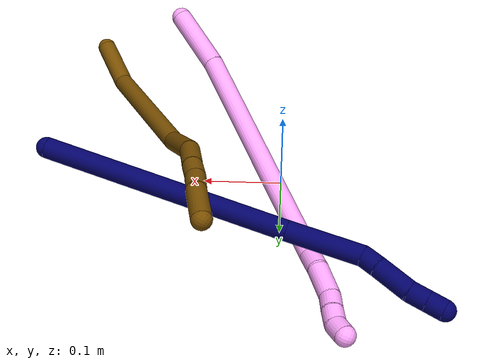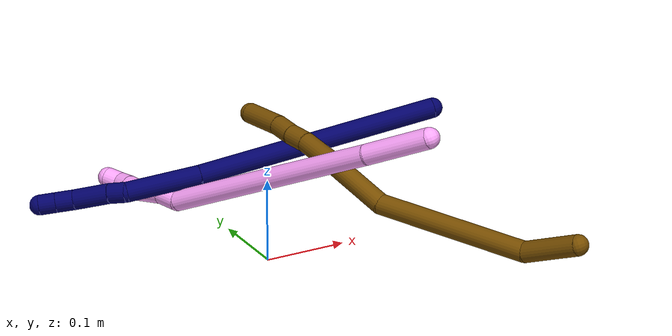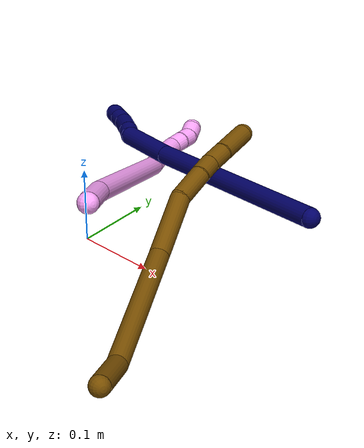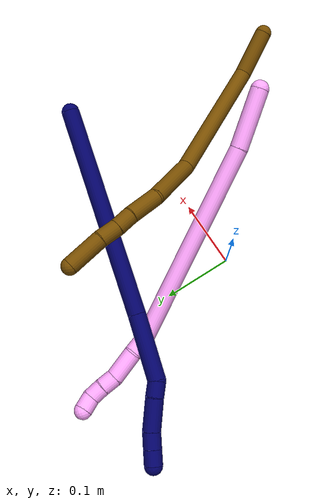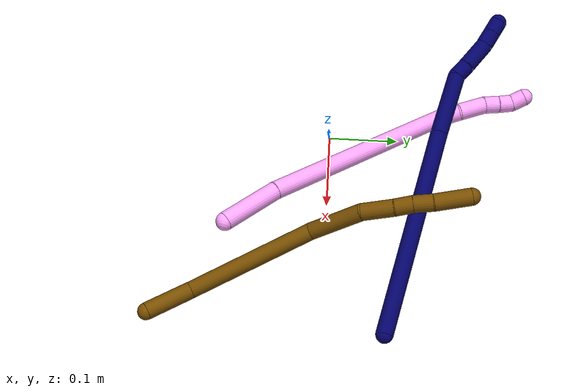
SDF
<sdf version="1.7">
 <world name="default">
  <model name="4">
   <static>0</static>
   <link name="4">
    <collision name="collision-cylinder-e_1_1_4">
     <pose>-0.012251 0.02252 -0.032454 -2.53498 -0.30074 0.901745</pose>
     <geometry><cylinder><radius>0.0125</radius><length>0.082717</length></cylinder></geometry>
     <surface>
      <friction><ode><mu>1.16</mu><mu2>1.16</mu2><slip1>0</slip1><slip2>0</slip2></ode></friction>
      <contact><ode><kp>1e+06</kp><kd>1</kd><max_vel>0</max_vel><min_depth>0.001</min_depth></ode></contact>
     </surface>
    </collision>
    <visual name="visual-cylinder-e_1_1_4">
     <pose>-0.012251 0.02252 -0.032454 -2.53498 -0.30074 0.901745</pose>
     <geometry><cylinder><radius>0.0125</radius><length>0.082717</length></cylinder></geometry>
     <material><ambient>1 0.65098 0.996078 1</ambient></material>
    </visual>
    <collision name="collision-cylinder-e_2_4_5">
     <pose>-0.072065 0.13614 -0.166038 -2.40831 -0.336167 0.832167</pose>
     <geometry><cylinder><radius>0.0125</radius><length>0.288365</length></cylinder></geometry>
     <surface>
      <friction><ode><mu>1.16</mu><mu2>1.16</mu2><slip1>0</slip1><slip2>0</slip2></ode></friction>
      <contact><ode><kp>1e+06</kp><kd>1</kd><max_vel>0</max_vel><min_depth>0.001</min_depth></ode></contact>
     </surface>
    </collision>
    <visual name="visual-cylinder-e_2_4_5">
     <pose>-0.072065 0.13614 -0.166038 -2.40831 -0.336167 0.832167</pose>
     <geometry><cylinder><radius>0.0125</radius><length>0.288365</length></cylinder></geometry>
     <material><ambient>1 0.65098 0.996078 1</ambient></material>
    </visual>
    <collision name="collision-cylinder-e_3_5_6">
     <pose>-0.129684 0.233425 -0.273796 -2.39093 -0.83725 1.69203</pose>
     <geometry><cylinder><radius>0.0125</radius><length>0.027082</length></cylinder></geometry>
     <surface>
      <friction><ode><mu>1.16</mu><mu2>1.16</mu2><slip1>0</slip1><slip2>0</slip2></ode></friction>
      <contact><ode><kp>1e+06</kp><kd>1</kd><max_vel>0</max_vel><min_depth>0.001</min_depth></ode></contact>
     </surface>
    </collision>
    <visual name="visual-cylinder-e_3_5_6">
     <pose>-0.129684 0.233425 -0.273796 -2.39093 -0.83725 1.69203</pose>
     <geometry><cylinder><radius>0.0125</radius><length>0.027082</length></cylinder></geometry>
     <material><ambient>1 0.65098 0.996078 1</ambient></material>
    </visual>
    <collision name="collision-cylinder-e_4_6_7">
     <pose>-0.151421 0.251692 -0.291677 -2.3206 -0.615621 1.26177</pose>
     <geometry><cylinder><radius>0.0125</radius><length>0.040446</length></cylinder></geometry>
     <surface>
      <friction><ode><mu>1.16</mu><mu2>1.16</mu2><slip1>0</slip1><slip2>0</slip2></ode></friction>
      <contact><ode><kp>1e+06</kp><kd>1</kd><max_vel>0</max_vel><min_depth>0.001</min_depth></ode></contact>
     </surface>
    </collision>
    <visual name="visual-cylinder-e_4_6_7">
     <pose>-0.151421 0.251692 -0.291677 -2.3206 -0.615621 1.26177</pose>
     <geometry><cylinder><radius>0.0125</radius><length>0.040446</length></cylinder></geometry>
     <material><ambient>1 0.65098 0.996078 1</ambient></material>
    </visual>
    <collision name="collision-cylinder-e_5_7_8">
     <pose>-0.170574 0.270453 -0.306229 -2.02979 -0.787088 1.17831</pose>
     <geometry><cylinder><radius>0.0125</radius><length>0.021106</length></cylinder></geometry>
     <surface>
      <friction><ode><mu>1.16</mu><mu2>1.16</mu2><slip1>0</slip1><slip2>0</slip2></ode></friction>
      <contact><ode><kp>1e+06</kp><kd>1</kd><max_vel>0</max_vel><min_depth>0.001</min_depth></ode></contact>
     </surface>
    </collision>
    <visual name="visual-cylinder-e_5_7_8">
     <pose>-0.170574 0.270453 -0.306229 -2.02979 -0.787088 1.17831</pose>
     <geometry><cylinder><radius>0.0125</radius><length>0.021106</length></cylinder></geometry>
     <material><ambient>1 0.65098 0.996078 1</ambient></material>
    </visual>
    <collision name="collision-cylinder-e_6_8_9">
     <pose>-0.184526 0.283728 -0.313434 -2.10524 -0.701625 1.14126</pose>
     <geometry><cylinder><radius>0.0125</radius><length>0.020072</length></cylinder></geometry>
     <surface>
      <friction><ode><mu>1.16</mu><mu2>1.16</mu2><slip1>0</slip1><slip2>0</slip2></ode></friction>
      <contact><ode><kp>1e+06</kp><kd>1</kd><max_vel>0</max_vel><min_depth>0.001</min_depth></ode></contact>
     </surface>
    </collision>
    <visual name="visual-cylinder-e_6_8_9">
     <pose>-0.184526 0.283728 -0.313434 -2.10524 -0.701625 1.14126</pose>
     <geometry><cylinder><radius>0.0125</radius><length>0.020072</length></cylinder></geometry>
     <material><ambient>1 0.65098 0.996078 1</ambient></material>
    </visual>
    <collision name="collision-cylinder-e_7_9_2">
     <pose>-0.198546 0.293637 -0.323193 -2.62667 -0.842462 2.07899</pose>
     <geometry><cylinder><radius>0.0125</radius><length>0.020212</length></cylinder></geometry>
     <surface>
      <friction><ode><mu>1.16</mu><mu2>1.16</mu2><slip1>0</slip1><slip2>0</slip2></ode></friction>
      <contact><ode><kp>1e+06</kp><kd>1</kd><max_vel>0</max_vel><min_depth>0.001</min_depth></ode></contact>
     </surface>
    </collision>
    <visual name="visual-cylinder-e_7_9_2">
     <pose>-0.198546 0.293637 -0.323193 -2.62667 -0.842462 2.07899</pose>
     <geometry><cylinder><radius>0.0125</radius><length>0.020212</length></cylinder></geometry>
     <material><ambient>1 0.65098 0.996078 1</ambient></material>
    </visual>
    <collision name="collision-sphere-2">
     <pose>-0.206088 0.29695 -0.329048 0 -0 0</pose>
     <geometry><sphere><radius>0.0125</radius></sphere></geometry>
     <surface>
      <friction><ode><mu>1.16</mu><mu2>1.16</mu2><slip1>0</slip1><slip2>0</slip2></ode></friction>
      <contact><ode><kp>1e+06</kp><kd>1</kd><max_vel>0</max_vel><min_depth>0.001</min_depth></ode></contact>
     </surface>
    </collision>
    <visual name="visual-sphere-2">
     <pose>-0.206088 0.29695 -0.329048 0 -0 0</pose>
     <geometry><sphere><radius>0.0125</radius></sphere></geometry>
     <material><ambient>1 0.65098 0.996078 1</ambient></material>
    </visual>
    <collision name="collision-sphere-9">
     <pose>-0.191004 0.290324 -0.317339 0 -0 0</pose>
     <geometry><sphere><radius>0.0125</radius></sphere></geometry>
     <surface>
      <friction><ode><mu>1.16</mu><mu2>1.16</mu2><slip1>0</slip1><slip2>0</slip2></ode></friction>
      <contact><ode><kp>1e+06</kp><kd>1</kd><max_vel>0</max_vel><min_depth>0.001</min_depth></ode></contact>
     </surface>
    </collision>
    <visual name="visual-sphere-9">
     <pose>-0.191004 0.290324 -0.317339 0 -0 0</pose>
     <geometry><sphere><radius>0.0125</radius></sphere></geometry>
     <material><ambient>1 0.65098 0.996078 1</ambient></material>
    </visual>
    <collision name="collision-sphere-4">
     <pose>-0.024503 0.045039 -0.064909 0 -0 0</pose>
     <geometry><sphere><radius>0.0125</radius></sphere></geometry>
     <surface>
      <friction><ode><mu>1.16</mu><mu2>1.16</mu2><slip1>0</slip1><slip2>0</slip2></ode></friction>
      <contact><ode><kp>1e+06</kp><kd>1</kd><max_vel>0</max_vel><min_depth>0.001</min_depth></ode></contact>
     </surface>
    </collision>
    <visual name="visual-sphere-4">
     <pose>-0.024503 0.045039 -0.064909 0 -0 0</pose>
     <geometry><sphere><radius>0.0125</radius></sphere></geometry>
     <material><ambient>1 0.65098 0.996078 1</ambient></material>
    </visual>
    <collision name="collision-sphere-1">
     <geometry><sphere><radius>0.0125</radius></sphere></geometry>
     <surface>
      <friction><ode><mu>1.16</mu><mu2>1.16</mu2><slip1>0</slip1><slip2>0</slip2></ode></friction>
      <contact><ode><kp>1e+06</kp><kd>1</kd><max_vel>0</max_vel><min_depth>0.001</min_depth></ode></contact>
     </surface>
    </collision>
    <visual name="visual-sphere-1">
     <geometry><sphere><radius>0.0125</radius></sphere></geometry>
     <material><ambient>1 0.65098 0.996078 1</ambient></material>
    </visual>
    <collision name="collision-sphere-8">
     <pose>-0.178048 0.277131 -0.30953 0 -0 0</pose>
     <geometry><sphere><radius>0.0125</radius></sphere></geometry>
     <surface>
      <friction><ode><mu>1.16</mu><mu2>1.16</mu2><slip1>0</slip1><slip2>0</slip2></ode></friction>
      <contact><ode><kp>1e+06</kp><kd>1</kd><max_vel>0</max_vel><min_depth>0.001</min_depth></ode></contact>
     </surface>
    </collision>
    <visual name="visual-sphere-8">
     <pose>-0.178048 0.277131 -0.30953 0 -0 0</pose>
     <geometry><sphere><radius>0.0125</radius></sphere></geometry>
     <material><ambient>1 0.65098 0.996078 1</ambient></material>
    </visual>
    <collision name="collision-sphere-5">
     <pose>-0.119626 0.227241 -0.267167 0 -0 0</pose>
     <geometry><sphere><radius>0.0125</radius></sphere></geometry>
     <surface>
      <friction><ode><mu>1.16</mu><mu2>1.16</mu2><slip1>0</slip1><slip2>0</slip2></ode></friction>
      <contact><ode><kp>1e+06</kp><kd>1</kd><max_vel>0</max_vel><min_depth>0.001</min_depth></ode></contact>
     </surface>
    </collision>
    <visual name="visual-sphere-5">
     <pose>-0.119626 0.227241 -0.267167 0 -0 0</pose>
     <geometry><sphere><radius>0.0125</radius></sphere></geometry>
     <material><ambient>1 0.65098 0.996078 1</ambient></material>
    </visual>
    <collision name="collision-sphere-6">
     <pose>-0.139743 0.239609 -0.280425 0 -0 0</pose>
     <geometry><sphere><radius>0.0125</radius></sphere></geometry>
     <surface>
      <friction><ode><mu>1.16</mu><mu2>1.16</mu2><slip1>0</slip1><slip2>0</slip2></ode></friction>
      <contact><ode><kp>1e+06</kp><kd>1</kd><max_vel>0</max_vel><min_depth>0.001</min_depth></ode></contact>
     </surface>
    </collision>
    <visual name="visual-sphere-6">
     <pose>-0.139743 0.239609 -0.280425 0 -0 0</pose>
     <geometry><sphere><radius>0.0125</radius></sphere></geometry>
     <material><ambient>1 0.65098 0.996078 1</ambient></material>
    </visual>
    <collision name="collision-sphere-7">
     <pose>-0.163099 0.263775 -0.302929 0 -0 0</pose>
     <geometry><sphere><radius>0.0125</radius></sphere></geometry>
     <surface>
      <friction><ode><mu>1.16</mu><mu2>1.16</mu2><slip1>0</slip1><slip2>0</slip2></ode></friction>
      <contact><ode><kp>1e+06</kp><kd>1</kd><max_vel>0</max_vel><min_depth>0.001</min_depth></ode></contact>
     </surface>
    </collision>
    <visual name="visual-sphere-7">
     <pose>-0.163099 0.263775 -0.302929 0 -0 0</pose>
     <geometry><sphere><radius>0.0125</radius></sphere></geometry>
     <material><ambient>1 0.65098 0.996078 1</ambient></material>
    </visual>
    <inertial>
     <pose>-0.085496 0.149921 -0.178126 0 -0 0</pose>
     <mass>0.5</mass>
     <inertia>
      <ixx>0.002744</ixx>
      <ixy>0</ixy>
      <ixz>0</ixz>
      <iyy>0.000783</iyy>
      <iyz>0</iyz>
      <izz>-0.000644</izz>
     </inertia>
    </inertial>
   </link>
   <pose>0.137206 -0.127708 0.171444 -1.15664 0.74451 -1.50233</pose>
  </model>
  <model name="7">
   <static>0</static>
   <link name="7">
    <collision name="collision-cylinder-e_1_1_4">
     <pose>-0.026697 0.021179 0.145567 -0.14448 -0.179538 0.013027</pose>
     <geometry><cylinder><radius>0.0125</radius><length>0.299005</length></cylinder></geometry>
     <surface>
      <friction><ode><mu>1.16</mu><mu2>1.16</mu2><slip1>0</slip1><slip2>0</slip2></ode></friction>
      <contact><ode><kp>1e+06</kp><kd>1</kd><max_vel>0</max_vel><min_depth>0.001</min_depth></ode></contact>
     </surface>
    </collision>
    <visual name="visual-cylinder-e_1_1_4">
     <pose>-0.026697 0.021179 0.145567 -0.14448 -0.179538 0.013027</pose>
     <geometry><cylinder><radius>0.0125</radius><length>0.299005</length></cylinder></geometry>
     <material><ambient>0.003922 0 0.403922 1</ambient></material>
    </visual>
    <collision name="collision-cylinder-e_2_4_5">
     <pose>-0.061517 0.051131 0.335296 -0.196092 -0.178482 0.017602</pose>
     <geometry><cylinder><radius>0.0125</radius><length>0.091503</length></cylinder></geometry>
     <surface>
      <friction><ode><mu>1.16</mu><mu2>1.16</mu2><slip1>0</slip1><slip2>0</slip2></ode></friction>
      <contact><ode><kp>1e+06</kp><kd>1</kd><max_vel>0</max_vel><min_depth>0.001</min_depth></ode></contact>
     </surface>
    </collision>
    <visual name="visual-cylinder-e_2_4_5">
     <pose>-0.061517 0.051131 0.335296 -0.196092 -0.178482 0.017602</pose>
     <geometry><cylinder><radius>0.0125</radius><length>0.091503</length></cylinder></geometry>
     <material><ambient>0.003922 0 0.403922 1</ambient></material>
    </visual>
    <collision name="collision-cylinder-e_3_5_6">
     <pose>-0.075347 0.06384 0.387824 -0.439762 -0.553034 0.12668</pose>
     <geometry><cylinder><radius>0.0125</radius><length>0.021731</length></cylinder></geometry>
     <surface>
      <friction><ode><mu>1.16</mu><mu2>1.16</mu2><slip1>0</slip1><slip2>0</slip2></ode></friction>
      <contact><ode><kp>1e+06</kp><kd>1</kd><max_vel>0</max_vel><min_depth>0.001</min_depth></ode></contact>
     </surface>
    </collision>
    <visual name="visual-cylinder-e_3_5_6">
     <pose>-0.075347 0.06384 0.387824 -0.439762 -0.553034 0.12668</pose>
     <geometry><cylinder><radius>0.0125</radius><length>0.021731</length></cylinder></geometry>
     <material><ambient>0.003922 0 0.403922 1</ambient></material>
    </visual>
    <collision name="collision-cylinder-e_4_6_7">
     <pose>-0.092942 0.073647 0.414071 -0.317274 -0.56334 0.092519</pose>
     <geometry><cylinder><radius>0.0125</radius><length>0.04452</length></cylinder></geometry>
     <surface>
      <friction><ode><mu>1.16</mu><mu2>1.16</mu2><slip1>0</slip1><slip2>0</slip2></ode></friction>
      <contact><ode><kp>1e+06</kp><kd>1</kd><max_vel>0</max_vel><min_depth>0.001</min_depth></ode></contact>
     </surface>
    </collision>
    <visual name="visual-cylinder-e_4_6_7">
     <pose>-0.092942 0.073647 0.414071 -0.317274 -0.56334 0.092519</pose>
     <geometry><cylinder><radius>0.0125</radius><length>0.04452</length></cylinder></geometry>
     <material><ambient>0.003922 0 0.403922 1</ambient></material>
    </visual>
    <collision name="collision-cylinder-e_5_7_8">
     <pose>-0.109116 0.082729 0.441805 -0.314945 -0.392274 0.063078</pose>
     <geometry><cylinder><radius>0.0125</radius><length>0.022429</length></cylinder></geometry>
     <surface>
      <friction><ode><mu>1.16</mu><mu2>1.16</mu2><slip1>0</slip1><slip2>0</slip2></ode></friction>
      <contact><ode><kp>1e+06</kp><kd>1</kd><max_vel>0</max_vel><min_depth>0.001</min_depth></ode></contact>
     </surface>
    </collision>
    <visual name="visual-cylinder-e_5_7_8">
     <pose>-0.109116 0.082729 0.441805 -0.314945 -0.392274 0.063078</pose>
     <geometry><cylinder><radius>0.0125</radius><length>0.022429</length></cylinder></geometry>
     <material><ambient>0.003922 0 0.403922 1</ambient></material>
    </visual>
    <collision name="collision-cylinder-e_6_8_2">
     <pose>-0.117363 0.088883 0.460819 -0.311011 -0.390422 0.061977</pose>
     <geometry><cylinder><radius>0.0125</radius><length>0.020812</length></cylinder></geometry>
     <surface>
      <friction><ode><mu>1.16</mu><mu2>1.16</mu2><slip1>0</slip1><slip2>0</slip2></ode></friction>
      <contact><ode><kp>1e+06</kp><kd>1</kd><max_vel>0</max_vel><min_depth>0.001</min_depth></ode></contact>
     </surface>
    </collision>
    <visual name="visual-cylinder-e_6_8_2">
     <pose>-0.117363 0.088883 0.460819 -0.311011 -0.390422 0.061977</pose>
     <geometry><cylinder><radius>0.0125</radius><length>0.020812</length></cylinder></geometry>
     <material><ambient>0.003922 0 0.403922 1</ambient></material>
    </visual>
    <collision name="collision-sphere-2">
     <pose>-0.121324 0.091828 0.46998 0 -0 0</pose>
     <geometry><sphere><radius>0.0125</radius></sphere></geometry>
     <surface>
      <friction><ode><mu>1.16</mu><mu2>1.16</mu2><slip1>0</slip1><slip2>0</slip2></ode></friction>
      <contact><ode><kp>1e+06</kp><kd>1</kd><max_vel>0</max_vel><min_depth>0.001</min_depth></ode></contact>
     </surface>
    </collision>
    <visual name="visual-sphere-2">
     <pose>-0.121324 0.091828 0.46998 0 -0 0</pose>
     <geometry><sphere><radius>0.0125</radius></sphere></geometry>
     <material><ambient>0.003922 0 0.403922 1</ambient></material>
    </visual>
    <collision name="collision-sphere-4">
     <pose>-0.053395 0.042358 0.291134 0 -0 0</pose>
     <geometry><sphere><radius>0.0125</radius></sphere></geometry>
     <surface>
      <friction><ode><mu>1.16</mu><mu2>1.16</mu2><slip1>0</slip1><slip2>0</slip2></ode></friction>
      <contact><ode><kp>1e+06</kp><kd>1</kd><max_vel>0</max_vel><min_depth>0.001</min_depth></ode></contact>
     </surface>
    </collision>
    <visual name="visual-sphere-4">
     <pose>-0.053395 0.042358 0.291134 0 -0 0</pose>
     <geometry><sphere><radius>0.0125</radius></sphere></geometry>
     <material><ambient>0.003922 0 0.403922 1</ambient></material>
    </visual>
    <collision name="collision-sphere-1">
     <geometry><sphere><radius>0.0125</radius></sphere></geometry>
     <surface>
      <friction><ode><mu>1.16</mu><mu2>1.16</mu2><slip1>0</slip1><slip2>0</slip2></ode></friction>
      <contact><ode><kp>1e+06</kp><kd>1</kd><max_vel>0</max_vel><min_depth>0.001</min_depth></ode></contact>
     </surface>
    </collision>
    <visual name="visual-sphere-1">
     <geometry><sphere><radius>0.0125</radius></sphere></geometry>
     <material><ambient>0.003922 0 0.403922 1</ambient></material>
    </visual>
    <collision name="collision-sphere-8">
     <pose>-0.113403 0.085939 0.451657 0 -0 0</pose>
     <geometry><sphere><radius>0.0125</radius></sphere></geometry>
     <surface>
      <friction><ode><mu>1.16</mu><mu2>1.16</mu2><slip1>0</slip1><slip2>0</slip2></ode></friction>
      <contact><ode><kp>1e+06</kp><kd>1</kd><max_vel>0</max_vel><min_depth>0.001</min_depth></ode></contact>
     </surface>
    </collision>
    <visual name="visual-sphere-8">
     <pose>-0.113403 0.085939 0.451657 0 -0 0</pose>
     <geometry><sphere><radius>0.0125</radius></sphere></geometry>
     <material><ambient>0.003922 0 0.403922 1</ambient></material>
    </visual>
    <collision name="collision-sphere-5">
     <pose>-0.06964 0.059903 0.379457 0 -0 0</pose>
     <geometry><sphere><radius>0.0125</radius></sphere></geometry>
     <surface>
      <friction><ode><mu>1.16</mu><mu2>1.16</mu2><slip1>0</slip1><slip2>0</slip2></ode></friction>
      <contact><ode><kp>1e+06</kp><kd>1</kd><max_vel>0</max_vel><min_depth>0.001</min_depth></ode></contact>
     </surface>
    </collision>
    <visual name="visual-sphere-5">
     <pose>-0.06964 0.059903 0.379457 0 -0 0</pose>
     <geometry><sphere><radius>0.0125</radius></sphere></geometry>
     <material><ambient>0.003922 0 0.403922 1</ambient></material>
    </visual>
    <collision name="collision-sphere-6">
     <pose>-0.081055 0.067776 0.39619 0 -0 0</pose>
     <geometry><sphere><radius>0.0125</radius></sphere></geometry>
     <surface>
      <friction><ode><mu>1.16</mu><mu2>1.16</mu2><slip1>0</slip1><slip2>0</slip2></ode></friction>
      <contact><ode><kp>1e+06</kp><kd>1</kd><max_vel>0</max_vel><min_depth>0.001</min_depth></ode></contact>
     </surface>
    </collision>
    <visual name="visual-sphere-6">
     <pose>-0.081055 0.067776 0.39619 0 -0 0</pose>
     <geometry><sphere><radius>0.0125</radius></sphere></geometry>
     <material><ambient>0.003922 0 0.403922 1</ambient></material>
    </visual>
    <collision name="collision-sphere-7">
     <pose>-0.104829 0.079519 0.431952 0 -0 0</pose>
     <geometry><sphere><radius>0.0125</radius></sphere></geometry>
     <surface>
      <friction><ode><mu>1.16</mu><mu2>1.16</mu2><slip1>0</slip1><slip2>0</slip2></ode></friction>
      <contact><ode><kp>1e+06</kp><kd>1</kd><max_vel>0</max_vel><min_depth>0.001</min_depth></ode></contact>
     </surface>
    </collision>
    <visual name="visual-sphere-7">
     <pose>-0.104829 0.079519 0.431952 0 -0 0</pose>
     <geometry><sphere><radius>0.0125</radius></sphere></geometry>
     <material><ambient>0.003922 0 0.403922 1</ambient></material>
    </visual>
    <inertial>
     <pose>-0.048553 0.038765 0.241135 0 -0 0</pose>
     <mass>0.5</mass>
     <inertia>
      <ixx>0.002303</ixx>
      <ixy>0</ixy>
      <ixz>0</ixz>
      <iyy>0.002334</iyy>
      <iyz>0</iyz>
      <izz>0.000121</izz>
     </inertia>
    </inertial>
   </link>
   <pose>0.277204 0.088837 0.107408 1.82851 -0.575284 -1.71636</pose>
  </model>
  <model name="12">
   <static>0</static>
   <link name="12">
    <collision name="collision-cylinder-e_1_1_4">
     <pose>-0.016829 0.011186 0.028723 -0.371389 -0.499752 0.095813</pose>
     <geometry><cylinder><radius>0.0125</radius><length>0.070239</length></cylinder></geometry>
     <surface>
      <friction><ode><mu>1.16</mu><mu2>1.16</mu2><slip1>0</slip1><slip2>0</slip2></ode></friction>
      <contact><ode><kp>1e+06</kp><kd>1</kd><max_vel>0</max_vel><min_depth>0.001</min_depth></ode></contact>
     </surface>
    </collision>
    <visual name="visual-cylinder-e_1_1_4">
     <pose>-0.016829 0.011186 0.028723 -0.371389 -0.499752 0.095813</pose>
     <geometry><cylinder><radius>0.0125</radius><length>0.070239</length></cylinder></geometry>
     <material><ambient>0.466667 0.301961 0 1</ambient></material>
    </visual>
    <collision name="collision-cylinder-e_2_4_5">
     <pose>-0.054192 0.084286 0.127544 -0.723472 -0.216118 0.08205</pose>
     <geometry><cylinder><radius>0.0125</radius><length>0.191505</length></cylinder></geometry>
     <surface>
      <friction><ode><mu>1.16</mu><mu2>1.16</mu2><slip1>0</slip1><slip2>0</slip2></ode></friction>
      <contact><ode><kp>1e+06</kp><kd>1</kd><max_vel>0</max_vel><min_depth>0.001</min_depth></ode></contact>
     </surface>
    </collision>
    <visual name="visual-cylinder-e_2_4_5">
     <pose>-0.054192 0.084286 0.127544 -0.723472 -0.216118 0.08205</pose>
     <geometry><cylinder><radius>0.0125</radius><length>0.191505</length></cylinder></geometry>
     <material><ambient>0.466667 0.301961 0 1</ambient></material>
    </visual>
    <collision name="collision-cylinder-e_3_5_6">
     <pose>-0.075887 0.182327 0.218346 -1.05041 -0.02789 0.016163</pose>
     <geometry><cylinder><radius>0.0125</radius><length>0.083315</length></cylinder></geometry>
     <surface>
      <friction><ode><mu>1.16</mu><mu2>1.16</mu2><slip1>0</slip1><slip2>0</slip2></ode></friction>
      <contact><ode><kp>1e+06</kp><kd>1</kd><max_vel>0</max_vel><min_depth>0.001</min_depth></ode></contact>
     </surface>
    </collision>
    <visual name="visual-cylinder-e_3_5_6">
     <pose>-0.075887 0.182327 0.218346 -1.05041 -0.02789 0.016163</pose>
     <geometry><cylinder><radius>0.0125</radius><length>0.083315</length></cylinder></geometry>
     <material><ambient>0.466667 0.301961 0 1</ambient></material>
    </visual>
    <collision name="collision-cylinder-e_4_6_7">
     <pose>-0.084918 0.237694 0.249785 -1.06187 -0.343094 0.202758</pose>
     <geometry><cylinder><radius>0.0125</radius><length>0.046785</length></cylinder></geometry>
     <surface>
      <friction><ode><mu>1.16</mu><mu2>1.16</mu2><slip1>0</slip1><slip2>0</slip2></ode></friction>
      <contact><ode><kp>1e+06</kp><kd>1</kd><max_vel>0</max_vel><min_depth>0.001</min_depth></ode></contact>
     </surface>
    </collision>
    <visual name="visual-cylinder-e_4_6_7">
     <pose>-0.084918 0.237694 0.249785 -1.06187 -0.343094 0.202758</pose>
     <geometry><cylinder><radius>0.0125</radius><length>0.046785</length></cylinder></geometry>
     <material><ambient>0.466667 0.301961 0 1</ambient></material>
    </visual>
    <collision name="collision-cylinder-e_5_7_8">
     <pose>-0.097816 0.26666 0.267702 -0.934761 -0.394056 0.200807</pose>
     <geometry><cylinder><radius>0.0125</radius><length>0.026195</length></cylinder></geometry>
     <surface>
      <friction><ode><mu>1.16</mu><mu2>1.16</mu2><slip1>0</slip1><slip2>0</slip2></ode></friction>
      <contact><ode><kp>1e+06</kp><kd>1</kd><max_vel>0</max_vel><min_depth>0.001</min_depth></ode></contact>
     </surface>
    </collision>
    <visual name="visual-cylinder-e_5_7_8">
     <pose>-0.097816 0.26666 0.267702 -0.934761 -0.394056 0.200807</pose>
     <geometry><cylinder><radius>0.0125</radius><length>0.026195</length></cylinder></geometry>
     <material><ambient>0.466667 0.301961 0 1</ambient></material>
    </visual>
    <collision name="collision-cylinder-e_6_8_9">
     <pose>-0.108955 0.287444 0.281209 -1.05123 -0.447376 0.262398</pose>
     <geometry><cylinder><radius>0.0125</radius><length>0.028252</length></cylinder></geometry>
     <surface>
      <friction><ode><mu>1.16</mu><mu2>1.16</mu2><slip1>0</slip1><slip2>0</slip2></ode></friction>
      <contact><ode><kp>1e+06</kp><kd>1</kd><max_vel>0</max_vel><min_depth>0.001</min_depth></ode></contact>
     </surface>
    </collision>
    <visual name="visual-cylinder-e_6_8_9">
     <pose>-0.108955 0.287444 0.281209 -1.05123 -0.447376 0.262398</pose>
     <geometry><cylinder><radius>0.0125</radius><length>0.028252</length></cylinder></geometry>
     <material><ambient>0.466667 0.301961 0 1</ambient></material>
    </visual>
    <collision name="collision-cylinder-e_7_9_2">
     <pose>-0.127415 0.317136 0.302411 -0.897083 -0.4778 0.233357</pose>
     <geometry><cylinder><radius>0.0125</radius><length>0.053709</length></cylinder></geometry>
     <surface>
      <friction><ode><mu>1.16</mu><mu2>1.16</mu2><slip1>0</slip1><slip2>0</slip2></ode></friction>
      <contact><ode><kp>1e+06</kp><kd>1</kd><max_vel>0</max_vel><min_depth>0.001</min_depth></ode></contact>
     </surface>
    </collision>
    <visual name="visual-cylinder-e_7_9_2">
     <pose>-0.127415 0.317136 0.302411 -0.897083 -0.4778 0.233357</pose>
     <geometry><cylinder><radius>0.0125</radius><length>0.053709</length></cylinder></geometry>
     <material><ambient>0.466667 0.301961 0 1</ambient></material>
    </visual>
    <collision name="collision-sphere-2">
     <pose>-0.139763 0.335773 0.317289 0 -0 0</pose>
     <geometry><sphere><radius>0.0125</radius></sphere></geometry>
     <surface>
      <friction><ode><mu>1.16</mu><mu2>1.16</mu2><slip1>0</slip1><slip2>0</slip2></ode></friction>
      <contact><ode><kp>1e+06</kp><kd>1</kd><max_vel>0</max_vel><min_depth>0.001</min_depth></ode></contact>
     </surface>
    </collision>
    <visual name="visual-sphere-2">
     <pose>-0.139763 0.335773 0.317289 0 -0 0</pose>
     <geometry><sphere><radius>0.0125</radius></sphere></geometry>
     <material><ambient>0.466667 0.301961 0 1</ambient></material>
    </visual>
    <collision name="collision-sphere-9">
     <pose>-0.115066 0.298499 0.287532 0 -0 0</pose>
     <geometry><sphere><radius>0.0125</radius></sphere></geometry>
     <surface>
      <friction><ode><mu>1.16</mu><mu2>1.16</mu2><slip1>0</slip1><slip2>0</slip2></ode></friction>
      <contact><ode><kp>1e+06</kp><kd>1</kd><max_vel>0</max_vel><min_depth>0.001</min_depth></ode></contact>
     </surface>
    </collision>
    <visual name="visual-sphere-9">
     <pose>-0.115066 0.298499 0.287532 0 -0 0</pose>
     <geometry><sphere><radius>0.0125</radius></sphere></geometry>
     <material><ambient>0.466667 0.301961 0 1</ambient></material>
    </visual>
    <collision name="collision-sphere-4">
     <pose>-0.033659 0.022373 0.057446 0 -0 0</pose>
     <geometry><sphere><radius>0.0125</radius></sphere></geometry>
     <surface>
      <friction><ode><mu>1.16</mu><mu2>1.16</mu2><slip1>0</slip1><slip2>0</slip2></ode></friction>
      <contact><ode><kp>1e+06</kp><kd>1</kd><max_vel>0</max_vel><min_depth>0.001</min_depth></ode></contact>
     </surface>
    </collision>
    <visual name="visual-sphere-4">
     <pose>-0.033659 0.022373 0.057446 0 -0 0</pose>
     <geometry><sphere><radius>0.0125</radius></sphere></geometry>
     <material><ambient>0.466667 0.301961 0 1</ambient></material>
    </visual>
    <collision name="collision-sphere-1">
     <geometry><sphere><radius>0.0125</radius></sphere></geometry>
     <surface>
      <friction><ode><mu>1.16</mu><mu2>1.16</mu2><slip1>0</slip1><slip2>0</slip2></ode></friction>
      <contact><ode><kp>1e+06</kp><kd>1</kd><max_vel>0</max_vel><min_depth>0.001</min_depth></ode></contact>
     </surface>
    </collision>
    <visual name="visual-sphere-1">
     <geometry><sphere><radius>0.0125</radius></sphere></geometry>
     <material><ambient>0.466667 0.301961 0 1</ambient></material>
    </visual>
    <collision name="collision-sphere-8">
     <pose>-0.102845 0.276389 0.274886 0 -0 0</pose>
     <geometry><sphere><radius>0.0125</radius></sphere></geometry>
     <surface>
      <friction><ode><mu>1.16</mu><mu2>1.16</mu2><slip1>0</slip1><slip2>0</slip2></ode></friction>
      <contact><ode><kp>1e+06</kp><kd>1</kd><max_vel>0</max_vel><min_depth>0.001</min_depth></ode></contact>
     </surface>
    </collision>
    <visual name="visual-sphere-8">
     <pose>-0.102845 0.276389 0.274886 0 -0 0</pose>
     <geometry><sphere><radius>0.0125</radius></sphere></geometry>
     <material><ambient>0.466667 0.301961 0 1</ambient></material>
    </visual>
    <collision name="collision-sphere-5">
     <pose>-0.074725 0.146198 0.197642 0 -0 0</pose>
     <geometry><sphere><radius>0.0125</radius></sphere></geometry>
     <surface>
      <friction><ode><mu>1.16</mu><mu2>1.16</mu2><slip1>0</slip1><slip2>0</slip2></ode></friction>
      <contact><ode><kp>1e+06</kp><kd>1</kd><max_vel>0</max_vel><min_depth>0.001</min_depth></ode></contact>
     </surface>
    </collision>
    <visual name="visual-sphere-5">
     <pose>-0.074725 0.146198 0.197642 0 -0 0</pose>
     <geometry><sphere><radius>0.0125</radius></sphere></geometry>
     <material><ambient>0.466667 0.301961 0 1</ambient></material>
    </visual>
    <collision name="collision-sphere-6">
     <pose>-0.077049 0.218456 0.239051 0 -0 0</pose>
     <geometry><sphere><radius>0.0125</radius></sphere></geometry>
     <surface>
      <friction><ode><mu>1.16</mu><mu2>1.16</mu2><slip1>0</slip1><slip2>0</slip2></ode></friction>
      <contact><ode><kp>1e+06</kp><kd>1</kd><max_vel>0</max_vel><min_depth>0.001</min_depth></ode></contact>
     </surface>
    </collision>
    <visual name="visual-sphere-6">
     <pose>-0.077049 0.218456 0.239051 0 -0 0</pose>
     <geometry><sphere><radius>0.0125</radius></sphere></geometry>
     <material><ambient>0.466667 0.301961 0 1</ambient></material>
    </visual>
    <collision name="collision-sphere-7">
     <pose>-0.092787 0.256931 0.260518 0 -0 0</pose>
     <geometry><sphere><radius>0.0125</radius></sphere></geometry>
     <surface>
      <friction><ode><mu>1.16</mu><mu2>1.16</mu2><slip1>0</slip1><slip2>0</slip2></ode></friction>
      <contact><ode><kp>1e+06</kp><kd>1</kd><max_vel>0</max_vel><min_depth>0.001</min_depth></ode></contact>
     </surface>
    </collision>
    <visual name="visual-sphere-7">
     <pose>-0.092787 0.256931 0.260518 0 -0 0</pose>
     <geometry><sphere><radius>0.0125</radius></sphere></geometry>
     <material><ambient>0.466667 0.301961 0 1</ambient></material>
    </visual>
    <inertial>
     <pose>-0.068679 0.150754 0.17504 0 -0 0</pose>
     <mass>0.5</mass>
     <inertia>
      <ixx>0.00073</ixx>
      <ixy>0</ixy>
      <ixz>0</ixz>
      <iyy>0.000608</iyy>
      <iyz>0</iyz>
      <izz>-0.00028</izz>
     </inertia>
    </inertial>
   </link>
   <pose>0.263853 -0.244286 0.058632 1.9872 -0.732591 -2.27612</pose>
  </model>
 </world>
</sdf>
